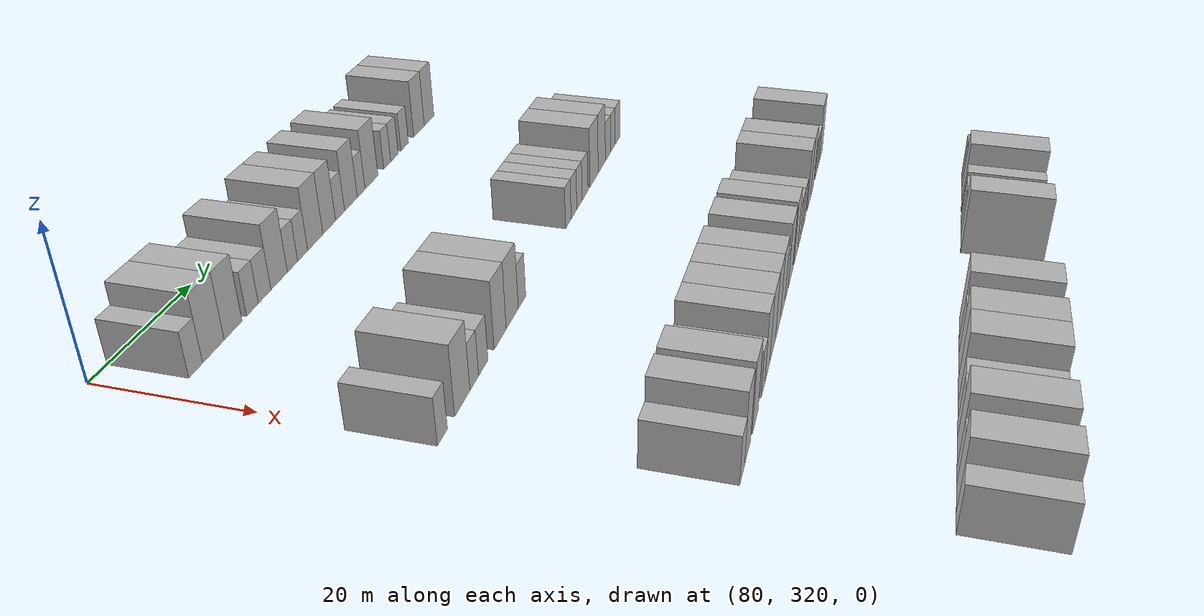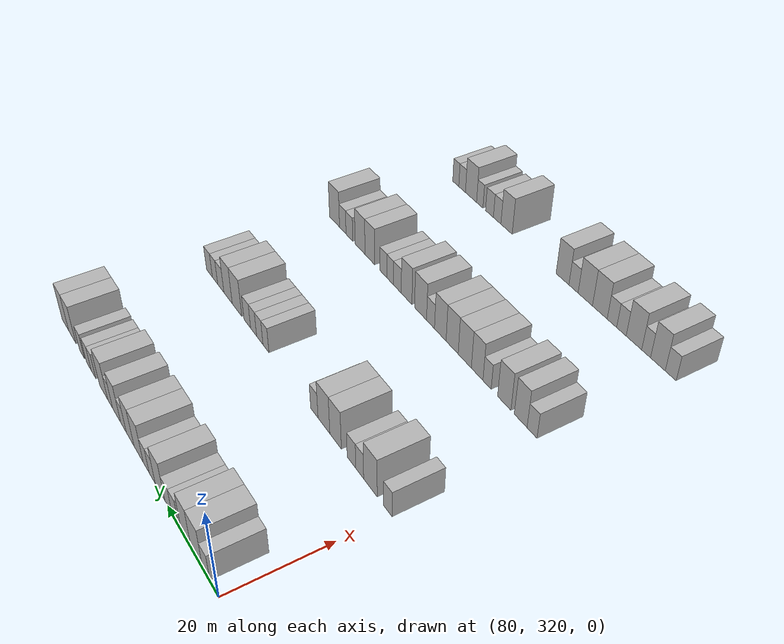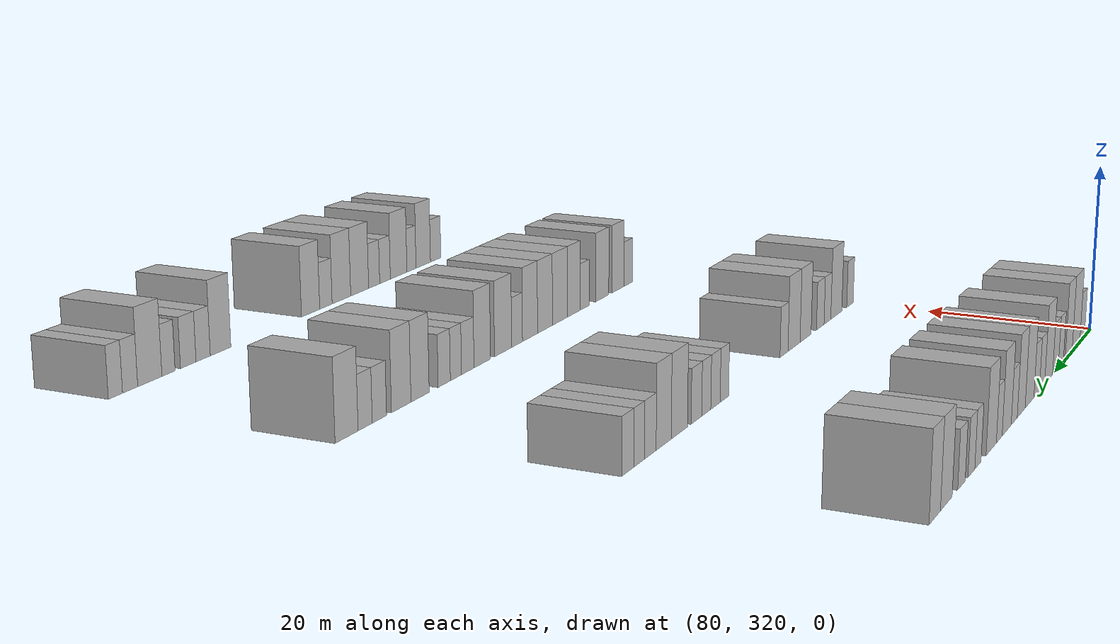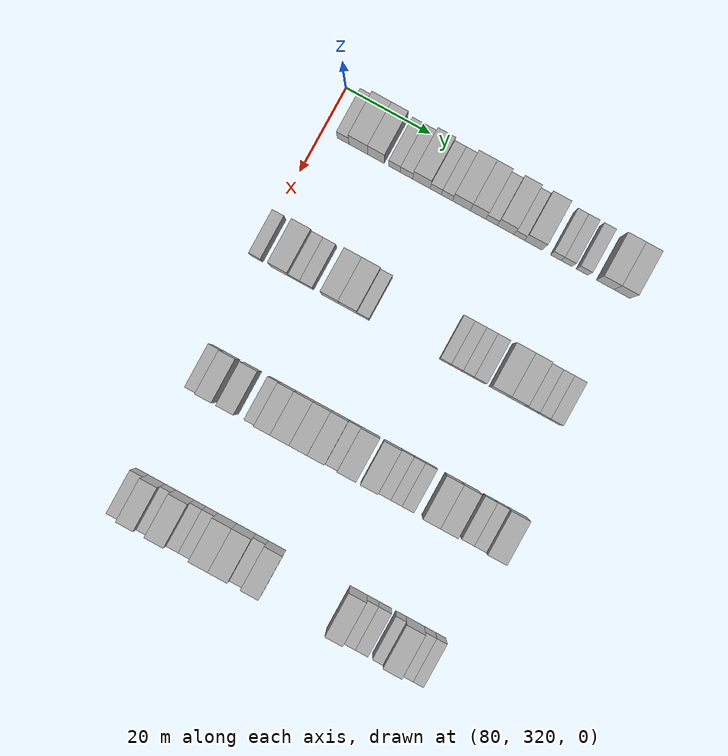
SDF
<sdf version="1.6">
 <world name="default">
  <model name="building_659">
   <static>1</static>
   <pose>85.0000 324.8237 0 0.000000 0.000000 0.000000</pose>
   <link name="link">
    <pose>0 0 3.00 0 0 0</pose>
    <collision name="collision"><geometry><box><size>10.0000 2.7493 6.0000</size></box></geometry></collision>
    <visual name="visual">
     <cast_shadows>0</cast_shadows>
     <geometry><box><size>10.0000 2.7493 6.0000</size></box></geometry>
     <material>
      <script>
       <uri>model://HANNAS_wall/materials/scripts</uri>
       <uri>model://HANNAS_wall/materials/textures</uri>
       <name>vrc/HANNAS_wall</name>
      </script>
     </material>
    </visual>
   </link>
  </model>
  <model name="building_660">
   <static>1</static>
   <pose>85.0000 328.4201 0 0.000000 0.000000 0.000000</pose>
   <link name="link">
    <pose>0 0 4.50 0 0 0</pose>
    <collision name="collision"><geometry><box><size>10.0000 4.4435 9.0000</size></box></geometry></collision>
    <visual name="visual">
     <cast_shadows>0</cast_shadows>
     <geometry><box><size>10.0000 4.4435 9.0000</size></box></geometry>
     <material>
      <script>
       <uri>model://HANNAS_wall/materials/scripts</uri>
       <uri>model://HANNAS_wall/materials/textures</uri>
       <name>vrc/HANNAS_wall</name>
      </script>
     </material>
    </visual>
   </link>
  </model>
  <model name="building_661">
   <static>1</static>
   <pose>85.0000 332.5845 0 0.000000 0.000000 0.000000</pose>
   <link name="link">
    <pose>0 0 4.50 0 0 0</pose>
    <collision name="collision"><geometry><box><size>10.0000 3.8853 9.0000</size></box></geometry></collision>
    <visual name="visual">
     <cast_shadows>0</cast_shadows>
     <geometry><box><size>10.0000 3.8853 9.0000</size></box></geometry>
     <material>
      <script>
       <uri>model://HANNAS_wall/materials/scripts</uri>
       <uri>model://HANNAS_wall/materials/textures</uri>
       <name>vrc/HANNAS_wall</name>
      </script>
     </material>
    </visual>
   </link>
  </model>
  <model name="building_662">
   <static>1</static>
   <pose>85.0000 336.8917 0 0.000000 0.000000 0.000000</pose>
   <link name="link">
    <pose>0 0 3.00 0 0 0</pose>
    <collision name="collision"><geometry><box><size>10.0000 2.7292 6.0000</size></box></geometry></collision>
    <visual name="visual">
     <cast_shadows>0</cast_shadows>
     <geometry><box><size>10.0000 2.7292 6.0000</size></box></geometry>
     <material>
      <script>
       <uri>model://HANNAS_wall/materials/scripts</uri>
       <uri>model://HANNAS_wall/materials/textures</uri>
       <name>vrc/HANNAS_wall</name>
      </script>
     </material>
    </visual>
   </link>
  </model>
  <model name="building_663">
   <static>1</static>
   <pose>85.0000 339.7560 0 0.000000 0.000000 0.000000</pose>
   <link name="link">
    <pose>0 0 3.00 0 0 0</pose>
    <collision name="collision"><geometry><box><size>10.0000 2.9993 6.0000</size></box></geometry></collision>
    <visual name="visual">
     <cast_shadows>0</cast_shadows>
     <geometry><box><size>10.0000 2.9993 6.0000</size></box></geometry>
     <material>
      <script>
       <uri>model://HANNAS_wall/materials/scripts</uri>
       <uri>model://HANNAS_wall/materials/textures</uri>
       <name>vrc/HANNAS_wall</name>
      </script>
     </material>
    </visual>
   </link>
  </model>
  <model name="building_664">
   <static>1</static>
   <pose>85.0000 343.2942 0 0.000000 0.000000 0.000000</pose>
   <link name="link">
    <pose>0 0 4.50 0 0 0</pose>
    <collision name="collision"><geometry><box><size>10.0000 4.0771 9.0000</size></box></geometry></collision>
    <visual name="visual">
     <cast_shadows>0</cast_shadows>
     <geometry><box><size>10.0000 4.0771 9.0000</size></box></geometry>
     <material>
      <script>
       <uri>model://HANNAS_wall/materials/scripts</uri>
       <uri>model://HANNAS_wall/materials/textures</uri>
       <name>vrc/HANNAS_wall</name>
      </script>
     </material>
    </visual>
   </link>
  </model>
  <model name="building_665">
   <static>1</static>
   <pose>85.0000 346.6534 0 0.000000 0.000000 0.000000</pose>
   <link name="link">
    <pose>0 0 3.00 0 0 0</pose>
    <collision name="collision"><geometry><box><size>10.0000 2.6413 6.0000</size></box></geometry></collision>
    <visual name="visual">
     <cast_shadows>0</cast_shadows>
     <geometry><box><size>10.0000 2.6413 6.0000</size></box></geometry>
     <material>
      <script>
       <uri>model://HANNAS_wall/materials/scripts</uri>
       <uri>model://HANNAS_wall/materials/textures</uri>
       <name>vrc/HANNAS_wall</name>
      </script>
     </material>
    </visual>
   </link>
  </model>
  <model name="building_666">
   <static>1</static>
   <pose>85.0000 349.3023 0 0.000000 0.000000 0.000000</pose>
   <link name="link">
    <pose>0 0 3.00 0 0 0</pose>
    <collision name="collision"><geometry><box><size>10.0000 2.6566 6.0000</size></box></geometry></collision>
    <visual name="visual">
     <cast_shadows>0</cast_shadows>
     <geometry><box><size>10.0000 2.6566 6.0000</size></box></geometry>
     <material>
      <script>
       <uri>model://HANNAS_wall/materials/scripts</uri>
       <uri>model://HANNAS_wall/materials/textures</uri>
       <name>vrc/HANNAS_wall</name>
      </script>
     </material>
    </visual>
   </link>
  </model>
  <model name="building_667">
   <static>1</static>
   <pose>85.0000 352.7273 0 0.000000 0.000000 0.000000</pose>
   <link name="link">
    <pose>0 0 4.50 0 0 0</pose>
    <collision name="collision"><geometry><box><size>10.0000 4.1936 9.0000</size></box></geometry></collision>
    <visual name="visual">
     <cast_shadows>0</cast_shadows>
     <geometry><box><size>10.0000 4.1936 9.0000</size></box></geometry>
     <material>
      <script>
       <uri>model://HANNAS_wall/materials/scripts</uri>
       <uri>model://HANNAS_wall/materials/textures</uri>
       <name>vrc/HANNAS_wall</name>
      </script>
     </material>
    </visual>
   </link>
  </model>
  <model name="building_668">
   <static>1</static>
   <pose>85.0000 356.6444 0 0.000000 0.000000 0.000000</pose>
   <link name="link">
    <pose>0 0 4.50 0 0 0</pose>
    <collision name="collision"><geometry><box><size>10.0000 3.6404 9.0000</size></box></geometry></collision>
    <visual name="visual">
     <cast_shadows>0</cast_shadows>
     <geometry><box><size>10.0000 3.6404 9.0000</size></box></geometry>
     <material>
      <script>
       <uri>model://HANNAS_wall/materials/scripts</uri>
       <uri>model://HANNAS_wall/materials/textures</uri>
       <name>vrc/HANNAS_wall</name>
      </script>
     </material>
    </visual>
   </link>
  </model>
  <model name="building_669">
   <static>1</static>
   <pose>85.0000 359.8116 0 0.000000 0.000000 0.000000</pose>
   <link name="link">
    <pose>0 0 3.00 0 0 0</pose>
    <collision name="collision"><geometry><box><size>10.0000 2.6940 6.0000</size></box></geometry></collision>
    <visual name="visual">
     <cast_shadows>0</cast_shadows>
     <geometry><box><size>10.0000 2.6940 6.0000</size></box></geometry>
     <material>
      <script>
       <uri>model://HANNAS_wall/materials/scripts</uri>
       <uri>model://HANNAS_wall/materials/textures</uri>
       <name>vrc/HANNAS_wall</name>
      </script>
     </material>
    </visual>
   </link>
  </model>
  <model name="building_670">
   <static>1</static>
   <pose>85.0000 363.1269 0 0.000000 0.000000 0.000000</pose>
   <link name="link">
    <pose>0 0 4.50 0 0 0</pose>
    <collision name="collision"><geometry><box><size>10.0000 3.9366 9.0000</size></box></geometry></collision>
    <visual name="visual">
     <cast_shadows>0</cast_shadows>
     <geometry><box><size>10.0000 3.9366 9.0000</size></box></geometry>
     <material>
      <script>
       <uri>model://HANNAS_wall/materials/scripts</uri>
       <uri>model://HANNAS_wall/materials/textures</uri>
       <name>vrc/HANNAS_wall</name>
      </script>
     </material>
    </visual>
   </link>
  </model>
  <model name="building_671">
   <static>1</static>
   <pose>85.0000 366.3253 0 0.000000 0.000000 0.000000</pose>
   <link name="link">
    <pose>0 0 3.00 0 0 0</pose>
    <collision name="collision"><geometry><box><size>10.0000 2.4602 6.0000</size></box></geometry></collision>
    <visual name="visual">
     <cast_shadows>0</cast_shadows>
     <geometry><box><size>10.0000 2.4602 6.0000</size></box></geometry>
     <material>
      <script>
       <uri>model://HANNAS_wall/materials/scripts</uri>
       <uri>model://HANNAS_wall/materials/textures</uri>
       <name>vrc/HANNAS_wall</name>
      </script>
     </material>
    </visual>
   </link>
  </model>
  <model name="building_672">
   <static>1</static>
   <pose>85.0000 369.6659 0 0.000000 0.000000 0.000000</pose>
   <link name="link">
    <pose>0 0 4.50 0 0 0</pose>
    <collision name="collision"><geometry><box><size>10.0000 4.2210 9.0000</size></box></geometry></collision>
    <visual name="visual">
     <cast_shadows>0</cast_shadows>
     <geometry><box><size>10.0000 4.2210 9.0000</size></box></geometry>
     <material>
      <script>
       <uri>model://HANNAS_wall/materials/scripts</uri>
       <uri>model://HANNAS_wall/materials/textures</uri>
       <name>vrc/HANNAS_wall</name>
      </script>
     </material>
    </visual>
   </link>
  </model>
  <model name="building_673">
   <static>1</static>
   <pose>85.0000 374.9916 0 0.000000 0.000000 0.000000</pose>
   <link name="link">
    <pose>0 0 3.00 0 0 0</pose>
    <collision name="collision"><geometry><box><size>10.0000 2.4303 6.0000</size></box></geometry></collision>
    <visual name="visual">
     <cast_shadows>0</cast_shadows>
     <geometry><box><size>10.0000 2.4303 6.0000</size></box></geometry>
     <material>
      <script>
       <uri>model://HANNAS_wall/materials/scripts</uri>
       <uri>model://HANNAS_wall/materials/textures</uri>
       <name>vrc/HANNAS_wall</name>
      </script>
     </material>
    </visual>
   </link>
  </model>
  <model name="building_674">
   <static>1</static>
   <pose>85.0000 377.5258 0 0.000000 0.000000 0.000000</pose>
   <link name="link">
    <pose>0 0 3.00 0 0 0</pose>
    <collision name="collision"><geometry><box><size>10.0000 2.6381 6.0000</size></box></geometry></collision>
    <visual name="visual">
     <cast_shadows>0</cast_shadows>
     <geometry><box><size>10.0000 2.6381 6.0000</size></box></geometry>
     <material>
      <script>
       <uri>model://HANNAS_wall/materials/scripts</uri>
       <uri>model://HANNAS_wall/materials/textures</uri>
       <name>vrc/HANNAS_wall</name>
      </script>
     </material>
    </visual>
   </link>
  </model>
  <model name="building_675">
   <static>1</static>
   <pose>85.0000 381.2319 0 0.000000 0.000000 0.000000</pose>
   <link name="link">
    <pose>0 0 3.00 0 0 0</pose>
    <collision name="collision"><geometry><box><size>10.0000 2.7742 6.0000</size></box></geometry></collision>
    <visual name="visual">
     <cast_shadows>0</cast_shadows>
     <geometry><box><size>10.0000 2.7742 6.0000</size></box></geometry>
     <material>
      <script>
       <uri>model://HANNAS_wall/materials/scripts</uri>
       <uri>model://HANNAS_wall/materials/textures</uri>
       <name>vrc/HANNAS_wall</name>
      </script>
     </material>
    </visual>
   </link>
  </model>
  <model name="building_676">
   <static>1</static>
   <pose>85.0000 386.6688 0 0.000000 0.000000 0.000000</pose>
   <link name="link">
    <pose>0 0 4.50 0 0 0</pose>
    <collision name="collision"><geometry><box><size>10.0000 4.0995 9.0000</size></box></geometry></collision>
    <visual name="visual">
     <cast_shadows>0</cast_shadows>
     <geometry><box><size>10.0000 4.0995 9.0000</size></box></geometry>
     <material>
      <script>
       <uri>model://HANNAS_wall/materials/scripts</uri>
       <uri>model://HANNAS_wall/materials/textures</uri>
       <name>vrc/HANNAS_wall</name>
      </script>
     </material>
    </visual>
   </link>
  </model>
  <model name="building_677">
   <static>1</static>
   <pose>85.0000 390.6404 0 0.000000 0.000000 0.000000</pose>
   <link name="link">
    <pose>0 0 4.50 0 0 0</pose>
    <collision name="collision"><geometry><box><size>10.0000 3.8437 9.0000</size></box></geometry></collision>
    <visual name="visual">
     <cast_shadows>0</cast_shadows>
     <geometry><box><size>10.0000 3.8437 9.0000</size></box></geometry>
     <material>
      <script>
       <uri>model://HANNAS_wall/materials/scripts</uri>
       <uri>model://HANNAS_wall/materials/textures</uri>
       <name>vrc/HANNAS_wall</name>
      </script>
     </material>
    </visual>
   </link>
  </model>
  <model name="building_889">
   <static>1</static>
   <pose>115.0000 320.9931 0 0.000000 0.000000 0.000000</pose>
   <link name="link">
    <pose>0 0 3.00 0 0 0</pose>
    <collision name="collision"><geometry><box><size>10.0000 2.6877 6.0000</size></box></geometry></collision>
    <visual name="visual">
     <cast_shadows>0</cast_shadows>
     <geometry><box><size>10.0000 2.6877 6.0000</size></box></geometry>
     <material>
      <script>
       <uri>model://HANNAS_wall/materials/scripts</uri>
       <uri>model://HANNAS_wall/materials/textures</uri>
       <name>vrc/HANNAS_wall</name>
      </script>
     </material>
    </visual>
   </link>
  </model>
  <model name="building_890">
   <static>1</static>
   <pose>115.0000 326.5501 0 0.000000 0.000000 0.000000</pose>
   <link name="link">
    <pose>0 0 4.50 0 0 0</pose>
    <collision name="collision"><geometry><box><size>10.0000 4.4263 9.0000</size></box></geometry></collision>
    <visual name="visual">
     <cast_shadows>0</cast_shadows>
     <geometry><box><size>10.0000 4.4263 9.0000</size></box></geometry>
     <material>
      <script>
       <uri>model://HANNAS_wall/materials/scripts</uri>
       <uri>model://HANNAS_wall/materials/textures</uri>
       <name>vrc/HANNAS_wall</name>
      </script>
     </material>
    </visual>
   </link>
  </model>
  <model name="building_891">
   <static>1</static>
   <pose>115.0000 330.0760 0 0.000000 0.000000 0.000000</pose>
   <link name="link">
    <pose>0 0 3.00 0 0 0</pose>
    <collision name="collision"><geometry><box><size>10.0000 2.6254 6.0000</size></box></geometry></collision>
    <visual name="visual">
     <cast_shadows>0</cast_shadows>
     <geometry><box><size>10.0000 2.6254 6.0000</size></box></geometry>
     <material>
      <script>
       <uri>model://HANNAS_wall/materials/scripts</uri>
       <uri>model://HANNAS_wall/materials/textures</uri>
       <name>vrc/HANNAS_wall</name>
      </script>
     </material>
    </visual>
   </link>
  </model>
  <model name="building_892">
   <static>1</static>
   <pose>115.0000 332.8530 0 0.000000 0.000000 0.000000</pose>
   <link name="link">
    <pose>0 0 3.00 0 0 0</pose>
    <collision name="collision"><geometry><box><size>10.0000 2.9287 6.0000</size></box></geometry></collision>
    <visual name="visual">
     <cast_shadows>0</cast_shadows>
     <geometry><box><size>10.0000 2.9287 6.0000</size></box></geometry>
     <material>
      <script>
       <uri>model://HANNAS_wall/materials/scripts</uri>
       <uri>model://HANNAS_wall/materials/textures</uri>
       <name>vrc/HANNAS_wall</name>
      </script>
     </material>
    </visual>
   </link>
  </model>
  <model name="building_893">
   <static>1</static>
   <pose>115.0000 338.3512 0 0.000000 0.000000 0.000000</pose>
   <link name="link">
    <pose>0 0 4.50 0 0 0</pose>
    <collision name="collision"><geometry><box><size>10.0000 4.0678 9.0000</size></box></geometry></collision>
    <visual name="visual">
     <cast_shadows>0</cast_shadows>
     <geometry><box><size>10.0000 4.0678 9.0000</size></box></geometry>
     <material>
      <script>
       <uri>model://HANNAS_wall/materials/scripts</uri>
       <uri>model://HANNAS_wall/materials/textures</uri>
       <name>vrc/HANNAS_wall</name>
      </script>
     </material>
    </visual>
   </link>
  </model>
  <model name="building_894">
   <static>1</static>
   <pose>115.0000 342.5300 0 0.000000 0.000000 0.000000</pose>
   <link name="link">
    <pose>0 0 4.50 0 0 0</pose>
    <collision name="collision"><geometry><box><size>10.0000 4.2897 9.0000</size></box></geometry></collision>
    <visual name="visual">
     <cast_shadows>0</cast_shadows>
     <geometry><box><size>10.0000 4.2897 9.0000</size></box></geometry>
     <material>
      <script>
       <uri>model://HANNAS_wall/materials/scripts</uri>
       <uri>model://HANNAS_wall/materials/textures</uri>
       <name>vrc/HANNAS_wall</name>
      </script>
     </material>
    </visual>
   </link>
  </model>
  <model name="building_895">
   <static>1</static>
   <pose>115.0000 346.0543 0 0.000000 0.000000 0.000000</pose>
   <link name="link">
    <pose>0 0 3.00 0 0 0</pose>
    <collision name="collision"><geometry><box><size>10.0000 2.7588 6.0000</size></box></geometry></collision>
    <visual name="visual">
     <cast_shadows>0</cast_shadows>
     <geometry><box><size>10.0000 2.7588 6.0000</size></box></geometry>
     <material>
      <script>
       <uri>model://HANNAS_wall/materials/scripts</uri>
       <uri>model://HANNAS_wall/materials/textures</uri>
       <name>vrc/HANNAS_wall</name>
      </script>
     </material>
    </visual>
   </link>
  </model>
  <model name="building_896">
   <static>1</static>
   <pose>115.0000 365.2146 0 0.000000 0.000000 0.000000</pose>
   <link name="link">
    <pose>0 0 3.00 0 0 0</pose>
    <collision name="collision"><geometry><box><size>10.0000 2.5206 6.0000</size></box></geometry></collision>
    <visual name="visual">
     <cast_shadows>0</cast_shadows>
     <geometry><box><size>10.0000 2.5206 6.0000</size></box></geometry>
     <material>
      <script>
       <uri>model://HANNAS_wall/materials/scripts</uri>
       <uri>model://HANNAS_wall/materials/textures</uri>
       <name>vrc/HANNAS_wall</name>
      </script>
     </material>
    </visual>
   </link>
  </model>
  <model name="building_897">
   <static>1</static>
   <pose>115.0000 367.8330 0 0.000000 0.000000 0.000000</pose>
   <link name="link">
    <pose>0 0 3.00 0 0 0</pose>
    <collision name="collision"><geometry><box><size>10.0000 2.7163 6.0000</size></box></geometry></collision>
    <visual name="visual">
     <cast_shadows>0</cast_shadows>
     <geometry><box><size>10.0000 2.7163 6.0000</size></box></geometry>
     <material>
      <script>
       <uri>model://HANNAS_wall/materials/scripts</uri>
       <uri>model://HANNAS_wall/materials/textures</uri>
       <name>vrc/HANNAS_wall</name>
      </script>
     </material>
    </visual>
   </link>
  </model>
  <model name="building_898">
   <static>1</static>
   <pose>115.0000 370.4916 0 0.000000 0.000000 0.000000</pose>
   <link name="link">
    <pose>0 0 3.00 0 0 0</pose>
    <collision name="collision"><geometry><box><size>10.0000 2.6010 6.0000</size></box></geometry></collision>
    <visual name="visual">
     <cast_shadows>0</cast_shadows>
     <geometry><box><size>10.0000 2.6010 6.0000</size></box></geometry>
     <material>
      <script>
       <uri>model://HANNAS_wall/materials/scripts</uri>
       <uri>model://HANNAS_wall/materials/textures</uri>
       <name>vrc/HANNAS_wall</name>
      </script>
     </material>
    </visual>
   </link>
  </model>
  <model name="building_899">
   <static>1</static>
   <pose>115.0000 373.2563 0 0.000000 0.000000 0.000000</pose>
   <link name="link">
    <pose>0 0 3.00 0 0 0</pose>
    <collision name="collision"><geometry><box><size>10.0000 2.9283 6.0000</size></box></geometry></collision>
    <visual name="visual">
     <cast_shadows>0</cast_shadows>
     <geometry><box><size>10.0000 2.9283 6.0000</size></box></geometry>
     <material>
      <script>
       <uri>model://HANNAS_wall/materials/scripts</uri>
       <uri>model://HANNAS_wall/materials/textures</uri>
       <name>vrc/HANNAS_wall</name>
      </script>
     </material>
    </visual>
   </link>
  </model>
  <model name="building_900">
   <static>1</static>
   <pose>115.0000 377.8925 0 0.000000 0.000000 0.000000</pose>
   <link name="link">
    <pose>0 0 4.50 0 0 0</pose>
    <collision name="collision"><geometry><box><size>10.0000 4.3442 9.0000</size></box></geometry></collision>
    <visual name="visual">
     <cast_shadows>0</cast_shadows>
     <geometry><box><size>10.0000 4.3442 9.0000</size></box></geometry>
     <material>
      <script>
       <uri>model://HANNAS_wall/materials/scripts</uri>
       <uri>model://HANNAS_wall/materials/textures</uri>
       <name>vrc/HANNAS_wall</name>
      </script>
     </material>
    </visual>
   </link>
  </model>
  <model name="building_901">
   <static>1</static>
   <pose>115.0000 382.0030 0 0.000000 0.000000 0.000000</pose>
   <link name="link">
    <pose>0 0 4.50 0 0 0</pose>
    <collision name="collision"><geometry><box><size>10.0000 3.8768 9.0000</size></box></geometry></collision>
    <visual name="visual">
     <cast_shadows>0</cast_shadows>
     <geometry><box><size>10.0000 3.8768 9.0000</size></box></geometry>
     <material>
      <script>
       <uri>model://HANNAS_wall/materials/scripts</uri>
       <uri>model://HANNAS_wall/materials/textures</uri>
       <name>vrc/HANNAS_wall</name>
      </script>
     </material>
    </visual>
   </link>
  </model>
  <model name="building_902">
   <static>1</static>
   <pose>115.0000 385.4208 0 0.000000 0.000000 0.000000</pose>
   <link name="link">
    <pose>0 0 3.00 0 0 0</pose>
    <collision name="collision"><geometry><box><size>10.0000 2.9586 6.0000</size></box></geometry></collision>
    <visual name="visual">
     <cast_shadows>0</cast_shadows>
     <geometry><box><size>10.0000 2.9586 6.0000</size></box></geometry>
     <material>
      <script>
       <uri>model://HANNAS_wall/materials/scripts</uri>
       <uri>model://HANNAS_wall/materials/textures</uri>
       <name>vrc/HANNAS_wall</name>
      </script>
     </material>
    </visual>
   </link>
  </model>
  <model name="building_903">
   <static>1</static>
   <pose>115.0000 388.1811 0 0.000000 0.000000 0.000000</pose>
   <link name="link">
    <pose>0 0 3.00 0 0 0</pose>
    <collision name="collision"><geometry><box><size>10.0000 2.5620 6.0000</size></box></geometry></collision>
    <visual name="visual">
     <cast_shadows>0</cast_shadows>
     <geometry><box><size>10.0000 2.5620 6.0000</size></box></geometry>
     <material>
      <script>
       <uri>model://HANNAS_wall/materials/scripts</uri>
       <uri>model://HANNAS_wall/materials/textures</uri>
       <name>vrc/HANNAS_wall</name>
      </script>
     </material>
    </visual>
   </link>
  </model>
  <model name="building_904">
   <static>1</static>
   <pose>115.0000 390.8962 0 0.000000 0.000000 0.000000</pose>
   <link name="link">
    <pose>0 0 3.00 0 0 0</pose>
    <collision name="collision"><geometry><box><size>10.0000 2.8682 6.0000</size></box></geometry></collision>
    <visual name="visual">
     <cast_shadows>0</cast_shadows>
     <geometry><box><size>10.0000 2.8682 6.0000</size></box></geometry>
     <material>
      <script>
       <uri>model://HANNAS_wall/materials/scripts</uri>
       <uri>model://HANNAS_wall/materials/textures</uri>
       <name>vrc/HANNAS_wall</name>
      </script>
     </material>
    </visual>
   </link>
  </model>
  <model name="building_1102">
   <static>1</static>
   <pose>145.0000 322.7870 0 0.000000 0.000000 0.000000</pose>
   <link name="link">
    <pose>0 0 3.00 0 0 0</pose>
    <collision name="collision"><geometry><box><size>10.0000 2.8675 6.0000</size></box></geometry></collision>
    <visual name="visual">
     <cast_shadows>0</cast_shadows>
     <geometry><box><size>10.0000 2.8675 6.0000</size></box></geometry>
     <material>
      <script>
       <uri>model://HANNAS_wall/materials/scripts</uri>
       <uri>model://HANNAS_wall/materials/textures</uri>
       <name>vrc/HANNAS_wall</name>
      </script>
     </material>
    </visual>
   </link>
  </model>
  <model name="building_1103">
   <static>1</static>
   <pose>145.0000 326.1055 0 0.000000 0.000000 0.000000</pose>
   <link name="link">
    <pose>0 0 4.50 0 0 0</pose>
    <collision name="collision"><geometry><box><size>10.0000 3.7697 9.0000</size></box></geometry></collision>
    <visual name="visual">
     <cast_shadows>0</cast_shadows>
     <geometry><box><size>10.0000 3.7697 9.0000</size></box></geometry>
     <material>
      <script>
       <uri>model://HANNAS_wall/materials/scripts</uri>
       <uri>model://HANNAS_wall/materials/textures</uri>
       <name>vrc/HANNAS_wall</name>
      </script>
     </material>
    </visual>
   </link>
  </model>
  <model name="building_1104">
   <static>1</static>
   <pose>145.0000 331.0170 0 0.000000 0.000000 0.000000</pose>
   <link name="link">
    <pose>0 0 4.50 0 0 0</pose>
    <collision name="collision"><geometry><box><size>10.0000 4.0532 9.0000</size></box></geometry></collision>
    <visual name="visual">
     <cast_shadows>0</cast_shadows>
     <geometry><box><size>10.0000 4.0532 9.0000</size></box></geometry>
     <material>
      <script>
       <uri>model://HANNAS_wall/materials/scripts</uri>
       <uri>model://HANNAS_wall/materials/textures</uri>
       <name>vrc/HANNAS_wall</name>
      </script>
     </material>
    </visual>
   </link>
  </model>
  <model name="building_1105">
   <static>1</static>
   <pose>145.0000 336.3381 0 0.000000 0.000000 0.000000</pose>
   <link name="link">
    <pose>0 0 3.00 0 0 0</pose>
    <collision name="collision"><geometry><box><size>10.0000 2.5890 6.0000</size></box></geometry></collision>
    <visual name="visual">
     <cast_shadows>0</cast_shadows>
     <geometry><box><size>10.0000 2.5890 6.0000</size></box></geometry>
     <material>
      <script>
       <uri>model://HANNAS_wall/materials/scripts</uri>
       <uri>model://HANNAS_wall/materials/textures</uri>
       <name>vrc/HANNAS_wall</name>
      </script>
     </material>
    </visual>
   </link>
  </model>
  <model name="building_1106">
   <static>1</static>
   <pose>145.0000 339.4962 0 0.000000 0.000000 0.000000</pose>
   <link name="link">
    <pose>0 0 4.50 0 0 0</pose>
    <collision name="collision"><geometry><box><size>10.0000 3.7272 9.0000</size></box></geometry></collision>
    <visual name="visual">
     <cast_shadows>0</cast_shadows>
     <geometry><box><size>10.0000 3.7272 9.0000</size></box></geometry>
     <material>
      <script>
       <uri>model://HANNAS_wall/materials/scripts</uri>
       <uri>model://HANNAS_wall/materials/textures</uri>
       <name>vrc/HANNAS_wall</name>
      </script>
     </material>
    </visual>
   </link>
  </model>
  <model name="building_1107">
   <static>1</static>
   <pose>145.0000 343.5284 0 0.000000 0.000000 0.000000</pose>
   <link name="link">
    <pose>0 0 4.50 0 0 0</pose>
    <collision name="collision"><geometry><box><size>10.0000 4.3371 9.0000</size></box></geometry></collision>
    <visual name="visual">
     <cast_shadows>0</cast_shadows>
     <geometry><box><size>10.0000 4.3371 9.0000</size></box></geometry>
     <material>
      <script>
       <uri>model://HANNAS_wall/materials/scripts</uri>
       <uri>model://HANNAS_wall/materials/textures</uri>
       <name>vrc/HANNAS_wall</name>
      </script>
     </material>
    </visual>
   </link>
  </model>
  <model name="building_1108">
   <static>1</static>
   <pose>145.0000 347.7443 0 0.000000 0.000000 0.000000</pose>
   <link name="link">
    <pose>0 0 4.50 0 0 0</pose>
    <collision name="collision"><geometry><box><size>10.0000 4.0948 9.0000</size></box></geometry></collision>
    <visual name="visual">
     <cast_shadows>0</cast_shadows>
     <geometry><box><size>10.0000 4.0948 9.0000</size></box></geometry>
     <material>
      <script>
       <uri>model://HANNAS_wall/materials/scripts</uri>
       <uri>model://HANNAS_wall/materials/textures</uri>
       <name>vrc/HANNAS_wall</name>
      </script>
     </material>
    </visual>
   </link>
  </model>
  <model name="building_1109">
   <static>1</static>
   <pose>145.0000 351.8050 0 0.000000 0.000000 0.000000</pose>
   <link name="link">
    <pose>0 0 4.50 0 0 0</pose>
    <collision name="collision"><geometry><box><size>10.0000 4.0265 9.0000</size></box></geometry></collision>
    <visual name="visual">
     <cast_shadows>0</cast_shadows>
     <geometry><box><size>10.0000 4.0265 9.0000</size></box></geometry>
     <material>
      <script>
       <uri>model://HANNAS_wall/materials/scripts</uri>
       <uri>model://HANNAS_wall/materials/textures</uri>
       <name>vrc/HANNAS_wall</name>
      </script>
     </material>
    </visual>
   </link>
  </model>
  <model name="building_1110">
   <static>1</static>
   <pose>145.0000 355.2289 0 0.000000 0.000000 0.000000</pose>
   <link name="link">
    <pose>0 0 3.00 0 0 0</pose>
    <collision name="collision"><geometry><box><size>10.0000 2.8213 6.0000</size></box></geometry></collision>
    <visual name="visual">
     <cast_shadows>0</cast_shadows>
     <geometry><box><size>10.0000 2.8213 6.0000</size></box></geometry>
     <material>
      <script>
       <uri>model://HANNAS_wall/materials/scripts</uri>
       <uri>model://HANNAS_wall/materials/textures</uri>
       <name>vrc/HANNAS_wall</name>
      </script>
     </material>
    </visual>
   </link>
  </model>
  <model name="building_1111">
   <static>1</static>
   <pose>145.0000 358.8091 0 0.000000 0.000000 0.000000</pose>
   <link name="link">
    <pose>0 0 4.50 0 0 0</pose>
    <collision name="collision"><geometry><box><size>10.0000 4.3390 9.0000</size></box></geometry></collision>
    <visual name="visual">
     <cast_shadows>0</cast_shadows>
     <geometry><box><size>10.0000 4.3390 9.0000</size></box></geometry>
     <material>
      <script>
       <uri>model://HANNAS_wall/materials/scripts</uri>
       <uri>model://HANNAS_wall/materials/textures</uri>
       <name>vrc/HANNAS_wall</name>
      </script>
     </material>
    </visual>
   </link>
  </model>
  <model name="building_1112">
   <static>1</static>
   <pose>145.0000 363.9814 0 0.000000 0.000000 0.000000</pose>
   <link name="link">
    <pose>0 0 4.50 0 0 0</pose>
    <collision name="collision"><geometry><box><size>10.0000 4.0056 9.0000</size></box></geometry></collision>
    <visual name="visual">
     <cast_shadows>0</cast_shadows>
     <geometry><box><size>10.0000 4.0056 9.0000</size></box></geometry>
     <material>
      <script>
       <uri>model://HANNAS_wall/materials/scripts</uri>
       <uri>model://HANNAS_wall/materials/textures</uri>
       <name>vrc/HANNAS_wall</name>
      </script>
     </material>
    </visual>
   </link>
  </model>
  <model name="building_1113">
   <static>1</static>
   <pose>145.0000 367.4616 0 0.000000 0.000000 0.000000</pose>
   <link name="link">
    <pose>0 0 3.00 0 0 0</pose>
    <collision name="collision"><geometry><box><size>10.0000 2.9547 6.0000</size></box></geometry></collision>
    <visual name="visual">
     <cast_shadows>0</cast_shadows>
     <geometry><box><size>10.0000 2.9547 6.0000</size></box></geometry>
     <material>
      <script>
       <uri>model://HANNAS_wall/materials/scripts</uri>
       <uri>model://HANNAS_wall/materials/textures</uri>
       <name>vrc/HANNAS_wall</name>
      </script>
     </material>
    </visual>
   </link>
  </model>
  <model name="building_1114">
   <static>1</static>
   <pose>145.0000 370.2323 0 0.000000 0.000000 0.000000</pose>
   <link name="link">
    <pose>0 0 3.00 0 0 0</pose>
    <collision name="collision"><geometry><box><size>10.0000 2.5866 6.0000</size></box></geometry></collision>
    <visual name="visual">
     <cast_shadows>0</cast_shadows>
     <geometry><box><size>10.0000 2.5866 6.0000</size></box></geometry>
     <material>
      <script>
       <uri>model://HANNAS_wall/materials/scripts</uri>
       <uri>model://HANNAS_wall/materials/textures</uri>
       <name>vrc/HANNAS_wall</name>
      </script>
     </material>
    </visual>
   </link>
  </model>
  <model name="building_1115">
   <static>1</static>
   <pose>145.0000 372.9079 0 0.000000 0.000000 0.000000</pose>
   <link name="link">
    <pose>0 0 3.00 0 0 0</pose>
    <collision name="collision"><geometry><box><size>10.0000 2.7646 6.0000</size></box></geometry></collision>
    <visual name="visual">
     <cast_shadows>0</cast_shadows>
     <geometry><box><size>10.0000 2.7646 6.0000</size></box></geometry>
     <material>
      <script>
       <uri>model://HANNAS_wall/materials/scripts</uri>
       <uri>model://HANNAS_wall/materials/textures</uri>
       <name>vrc/HANNAS_wall</name>
      </script>
     </material>
    </visual>
   </link>
  </model>
  <model name="building_1116">
   <static>1</static>
   <pose>145.0000 378.2614 0 0.000000 0.000000 0.000000</pose>
   <link name="link">
    <pose>0 0 4.50 0 0 0</pose>
    <collision name="collision"><geometry><box><size>10.0000 3.9424 9.0000</size></box></geometry></collision>
    <visual name="visual">
     <cast_shadows>0</cast_shadows>
     <geometry><box><size>10.0000 3.9424 9.0000</size></box></geometry>
     <material>
      <script>
       <uri>model://HANNAS_wall/materials/scripts</uri>
       <uri>model://HANNAS_wall/materials/textures</uri>
       <name>vrc/HANNAS_wall</name>
      </script>
     </material>
    </visual>
   </link>
  </model>
  <model name="building_1117">
   <static>1</static>
   <pose>145.0000 382.2823 0 0.000000 0.000000 0.000000</pose>
   <link name="link">
    <pose>0 0 4.50 0 0 0</pose>
    <collision name="collision"><geometry><box><size>10.0000 4.0993 9.0000</size></box></geometry></collision>
    <visual name="visual">
     <cast_shadows>0</cast_shadows>
     <geometry><box><size>10.0000 4.0993 9.0000</size></box></geometry>
     <material>
      <script>
       <uri>model://HANNAS_wall/materials/scripts</uri>
       <uri>model://HANNAS_wall/materials/textures</uri>
       <name>vrc/HANNAS_wall</name>
      </script>
     </material>
    </visual>
   </link>
  </model>
  <model name="building_1118">
   <static>1</static>
   <pose>145.0000 386.7726 0 0.000000 0.000000 0.000000</pose>
   <link name="link">
    <pose>0 0 3.00 0 0 0</pose>
    <collision name="collision"><geometry><box><size>10.0000 2.8815 6.0000</size></box></geometry></collision>
    <visual name="visual">
     <cast_shadows>0</cast_shadows>
     <geometry><box><size>10.0000 2.8815 6.0000</size></box></geometry>
     <material>
      <script>
       <uri>model://HANNAS_wall/materials/scripts</uri>
       <uri>model://HANNAS_wall/materials/textures</uri>
       <name>vrc/HANNAS_wall</name>
      </script>
     </material>
    </visual>
   </link>
  </model>
  <model name="building_1119">
   <static>1</static>
   <pose>145.0000 389.6103 0 0.000000 0.000000 0.000000</pose>
   <link name="link">
    <pose>0 0 3.00 0 0 0</pose>
    <collision name="collision"><geometry><box><size>10.0000 2.7938 6.0000</size></box></geometry></collision>
    <visual name="visual">
     <cast_shadows>0</cast_shadows>
     <geometry><box><size>10.0000 2.7938 6.0000</size></box></geometry>
     <material>
      <script>
       <uri>model://HANNAS_wall/materials/scripts</uri>
       <uri>model://HANNAS_wall/materials/textures</uri>
       <name>vrc/HANNAS_wall</name>
      </script>
     </material>
    </visual>
   </link>
  </model>
  <model name="building_1120">
   <static>1</static>
   <pose>145.0000 393.2110 0 0.000000 0.000000 0.000000</pose>
   <link name="link">
    <pose>0 0 4.50 0 0 0</pose>
    <collision name="collision"><geometry><box><size>10.0000 4.4075 9.0000</size></box></geometry></collision>
    <visual name="visual">
     <cast_shadows>0</cast_shadows>
     <geometry><box><size>10.0000 4.4075 9.0000</size></box></geometry>
     <material>
      <script>
       <uri>model://HANNAS_wall/materials/scripts</uri>
       <uri>model://HANNAS_wall/materials/textures</uri>
       <name>vrc/HANNAS_wall</name>
      </script>
     </material>
    </visual>
   </link>
  </model>
  <model name="building_1321">
   <static>1</static>
   <pose>175.0000 321.2180 0 0.000000 0.000000 0.000000</pose>
   <link name="link">
    <pose>0 0 3.00 0 0 0</pose>
    <collision name="collision"><geometry><box><size>10.0000 2.9345 6.0000</size></box></geometry></collision>
    <visual name="visual">
     <cast_shadows>0</cast_shadows>
     <geometry><box><size>10.0000 2.9345 6.0000</size></box></geometry>
     <material>
      <script>
       <uri>model://HANNAS_wall/materials/scripts</uri>
       <uri>model://HANNAS_wall/materials/textures</uri>
       <name>vrc/HANNAS_wall</name>
      </script>
     </material>
    </visual>
   </link>
  </model>
  <model name="building_1322">
   <static>1</static>
   <pose>175.0000 324.6930 0 0.000000 0.000000 0.000000</pose>
   <link name="link">
    <pose>0 0 4.50 0 0 0</pose>
    <collision name="collision"><geometry><box><size>10.0000 4.0155 9.0000</size></box></geometry></collision>
    <visual name="visual">
     <cast_shadows>0</cast_shadows>
     <geometry><box><size>10.0000 4.0155 9.0000</size></box></geometry>
     <material>
      <script>
       <uri>model://HANNAS_wall/materials/scripts</uri>
       <uri>model://HANNAS_wall/materials/textures</uri>
       <name>vrc/HANNAS_wall</name>
      </script>
     </material>
    </visual>
   </link>
  </model>
  <model name="building_1323">
   <static>1</static>
   <pose>175.0000 327.9402 0 0.000000 0.000000 0.000000</pose>
   <link name="link">
    <pose>0 0 3.00 0 0 0</pose>
    <collision name="collision"><geometry><box><size>10.0000 2.4790 6.0000</size></box></geometry></collision>
    <visual name="visual">
     <cast_shadows>0</cast_shadows>
     <geometry><box><size>10.0000 2.4790 6.0000</size></box></geometry>
     <material>
      <script>
       <uri>model://HANNAS_wall/materials/scripts</uri>
       <uri>model://HANNAS_wall/materials/textures</uri>
       <name>vrc/HANNAS_wall</name>
      </script>
     </material>
    </visual>
   </link>
  </model>
  <model name="building_1324">
   <static>1</static>
   <pose>175.0000 331.3911 0 0.000000 0.000000 0.000000</pose>
   <link name="link">
    <pose>0 0 4.50 0 0 0</pose>
    <collision name="collision"><geometry><box><size>10.0000 4.4228 9.0000</size></box></geometry></collision>
    <visual name="visual">
     <cast_shadows>0</cast_shadows>
     <geometry><box><size>10.0000 4.4228 9.0000</size></box></geometry>
     <material>
      <script>
       <uri>model://HANNAS_wall/materials/scripts</uri>
       <uri>model://HANNAS_wall/materials/textures</uri>
       <name>vrc/HANNAS_wall</name>
      </script>
     </material>
    </visual>
   </link>
  </model>
  <model name="building_1325">
   <static>1</static>
   <pose>175.0000 334.9879 0 0.000000 0.000000 0.000000</pose>
   <link name="link">
    <pose>0 0 3.00 0 0 0</pose>
    <collision name="collision"><geometry><box><size>10.0000 2.7707 6.0000</size></box></geometry></collision>
    <visual name="visual">
     <cast_shadows>0</cast_shadows>
     <geometry><box><size>10.0000 2.7707 6.0000</size></box></geometry>
     <material>
      <script>
       <uri>model://HANNAS_wall/materials/scripts</uri>
       <uri>model://HANNAS_wall/materials/textures</uri>
       <name>vrc/HANNAS_wall</name>
      </script>
     </material>
    </visual>
   </link>
  </model>
  <model name="building_1326">
   <static>1</static>
   <pose>175.0000 337.7814 0 0.000000 0.000000 0.000000</pose>
   <link name="link">
    <pose>0 0 3.00 0 0 0</pose>
    <collision name="collision"><geometry><box><size>10.0000 2.8163 6.0000</size></box></geometry></collision>
    <visual name="visual">
     <cast_shadows>0</cast_shadows>
     <geometry><box><size>10.0000 2.8163 6.0000</size></box></geometry>
     <material>
      <script>
       <uri>model://HANNAS_wall/materials/scripts</uri>
       <uri>model://HANNAS_wall/materials/textures</uri>
       <name>vrc/HANNAS_wall</name>
      </script>
     </material>
    </visual>
   </link>
  </model>
  <model name="building_1327">
   <static>1</static>
   <pose>175.0000 341.4244 0 0.000000 0.000000 0.000000</pose>
   <link name="link">
    <pose>0 0 4.50 0 0 0</pose>
    <collision name="collision"><geometry><box><size>10.0000 4.4697 9.0000</size></box></geometry></collision>
    <visual name="visual">
     <cast_shadows>0</cast_shadows>
     <geometry><box><size>10.0000 4.4697 9.0000</size></box></geometry>
     <material>
      <script>
       <uri>model://HANNAS_wall/materials/scripts</uri>
       <uri>model://HANNAS_wall/materials/textures</uri>
       <name>vrc/HANNAS_wall</name>
      </script>
     </material>
    </visual>
   </link>
  </model>
  <model name="building_1328">
   <static>1</static>
   <pose>175.0000 345.9035 0 0.000000 0.000000 0.000000</pose>
   <link name="link">
    <pose>0 0 4.50 0 0 0</pose>
    <collision name="collision"><geometry><box><size>10.0000 4.4885 9.0000</size></box></geometry></collision>
    <visual name="visual">
     <cast_shadows>0</cast_shadows>
     <geometry><box><size>10.0000 4.4885 9.0000</size></box></geometry>
     <material>
      <script>
       <uri>model://HANNAS_wall/materials/scripts</uri>
       <uri>model://HANNAS_wall/materials/textures</uri>
       <name>vrc/HANNAS_wall</name>
      </script>
     </material>
    </visual>
   </link>
  </model>
  <model name="building_1329">
   <static>1</static>
   <pose>175.0000 349.6073 0 0.000000 0.000000 0.000000</pose>
   <link name="link">
    <pose>0 0 3.00 0 0 0</pose>
    <collision name="collision"><geometry><box><size>10.0000 2.9190 6.0000</size></box></geometry></collision>
    <visual name="visual">
     <cast_shadows>0</cast_shadows>
     <geometry><box><size>10.0000 2.9190 6.0000</size></box></geometry>
     <material>
      <script>
       <uri>model://HANNAS_wall/materials/scripts</uri>
       <uri>model://HANNAS_wall/materials/textures</uri>
       <name>vrc/HANNAS_wall</name>
      </script>
     </material>
    </visual>
   </link>
  </model>
  <model name="building_1330">
   <static>1</static>
   <pose>175.0000 353.1553 0 0.000000 0.000000 0.000000</pose>
   <link name="link">
    <pose>0 0 4.50 0 0 0</pose>
    <collision name="collision"><geometry><box><size>10.0000 4.1770 9.0000</size></box></geometry></collision>
    <visual name="visual">
     <cast_shadows>0</cast_shadows>
     <geometry><box><size>10.0000 4.1770 9.0000</size></box></geometry>
     <material>
      <script>
       <uri>model://HANNAS_wall/materials/scripts</uri>
       <uri>model://HANNAS_wall/materials/textures</uri>
       <name>vrc/HANNAS_wall</name>
      </script>
     </material>
    </visual>
   </link>
  </model>
  <model name="building_1331">
   <static>1</static>
   <pose>175.0000 372.3894 0 0.000000 0.000000 0.000000</pose>
   <link name="link">
    <pose>0 0 4.50 0 0 0</pose>
    <collision name="collision"><geometry><box><size>10.0000 4.0971 9.0000</size></box></geometry></collision>
    <visual name="visual">
     <cast_shadows>0</cast_shadows>
     <geometry><box><size>10.0000 4.0971 9.0000</size></box></geometry>
     <material>
      <script>
       <uri>model://HANNAS_wall/materials/scripts</uri>
       <uri>model://HANNAS_wall/materials/textures</uri>
       <name>vrc/HANNAS_wall</name>
      </script>
     </material>
    </visual>
   </link>
  </model>
  <model name="building_1332">
   <static>1</static>
   <pose>175.0000 375.8208 0 0.000000 0.000000 0.000000</pose>
   <link name="link">
    <pose>0 0 3.00 0 0 0</pose>
    <collision name="collision"><geometry><box><size>10.0000 2.7657 6.0000</size></box></geometry></collision>
    <visual name="visual">
     <cast_shadows>0</cast_shadows>
     <geometry><box><size>10.0000 2.7657 6.0000</size></box></geometry>
     <material>
      <script>
       <uri>model://HANNAS_wall/materials/scripts</uri>
       <uri>model://HANNAS_wall/materials/textures</uri>
       <name>vrc/HANNAS_wall</name>
      </script>
     </material>
    </visual>
   </link>
  </model>
  <model name="building_1333">
   <static>1</static>
   <pose>175.0000 378.6764 0 0.000000 0.000000 0.000000</pose>
   <link name="link">
    <pose>0 0 3.00 0 0 0</pose>
    <collision name="collision"><geometry><box><size>10.0000 2.9454 6.0000</size></box></geometry></collision>
    <visual name="visual">
     <cast_shadows>0</cast_shadows>
     <geometry><box><size>10.0000 2.9454 6.0000</size></box></geometry>
     <material>
      <script>
       <uri>model://HANNAS_wall/materials/scripts</uri>
       <uri>model://HANNAS_wall/materials/textures</uri>
       <name>vrc/HANNAS_wall</name>
      </script>
     </material>
    </visual>
   </link>
  </model>
  <model name="building_1334">
   <static>1</static>
   <pose>175.0000 382.3618 0 0.000000 0.000000 0.000000</pose>
   <link name="link">
    <pose>0 0 3.00 0 0 0</pose>
    <collision name="collision"><geometry><box><size>10.0000 2.4255 6.0000</size></box></geometry></collision>
    <visual name="visual">
     <cast_shadows>0</cast_shadows>
     <geometry><box><size>10.0000 2.4255 6.0000</size></box></geometry>
     <material>
      <script>
       <uri>model://HANNAS_wall/materials/scripts</uri>
       <uri>model://HANNAS_wall/materials/textures</uri>
       <name>vrc/HANNAS_wall</name>
      </script>
     </material>
    </visual>
   </link>
  </model>
  <model name="building_1335">
   <static>1</static>
   <pose>175.0000 385.7442 0 0.000000 0.000000 0.000000</pose>
   <link name="link">
    <pose>0 0 4.50 0 0 0</pose>
    <collision name="collision"><geometry><box><size>10.0000 4.3393 9.0000</size></box></geometry></collision>
    <visual name="visual">
     <cast_shadows>0</cast_shadows>
     <geometry><box><size>10.0000 4.3393 9.0000</size></box></geometry>
     <material>
      <script>
       <uri>model://HANNAS_wall/materials/scripts</uri>
       <uri>model://HANNAS_wall/materials/textures</uri>
       <name>vrc/HANNAS_wall</name>
      </script>
     </material>
    </visual>
   </link>
  </model>
  <model name="building_1336">
   <static>1</static>
   <pose>175.0000 389.2364 0 0.000000 0.000000 0.000000</pose>
   <link name="link">
    <pose>0 0 3.00 0 0 0</pose>
    <collision name="collision"><geometry><box><size>10.0000 2.6450 6.0000</size></box></geometry></collision>
    <visual name="visual">
     <cast_shadows>0</cast_shadows>
     <geometry><box><size>10.0000 2.6450 6.0000</size></box></geometry>
     <material>
      <script>
       <uri>model://HANNAS_wall/materials/scripts</uri>
       <uri>model://HANNAS_wall/materials/textures</uri>
       <name>vrc/HANNAS_wall</name>
      </script>
     </material>
    </visual>
   </link>
  </model>
  <model name="building_1337">
   <static>1</static>
   <pose>175.0000 391.7724 0 0.000000 0.000000 0.000000</pose>
   <link name="link">
    <pose>0 0 3.00 0 0 0</pose>
    <collision name="collision"><geometry><box><size>10.0000 2.4268 6.0000</size></box></geometry></collision>
    <visual name="visual">
     <cast_shadows>0</cast_shadows>
     <geometry><box><size>10.0000 2.4268 6.0000</size></box></geometry>
     <material>
      <script>
       <uri>model://HANNAS_wall/materials/scripts</uri>
       <uri>model://HANNAS_wall/materials/textures</uri>
       <name>vrc/HANNAS_wall</name>
      </script>
     </material>
    </visual>
   </link>
  </model>
 </world>
</sdf>
